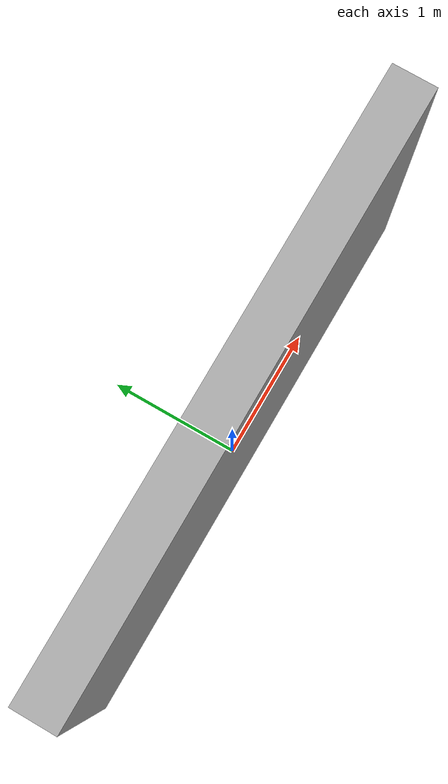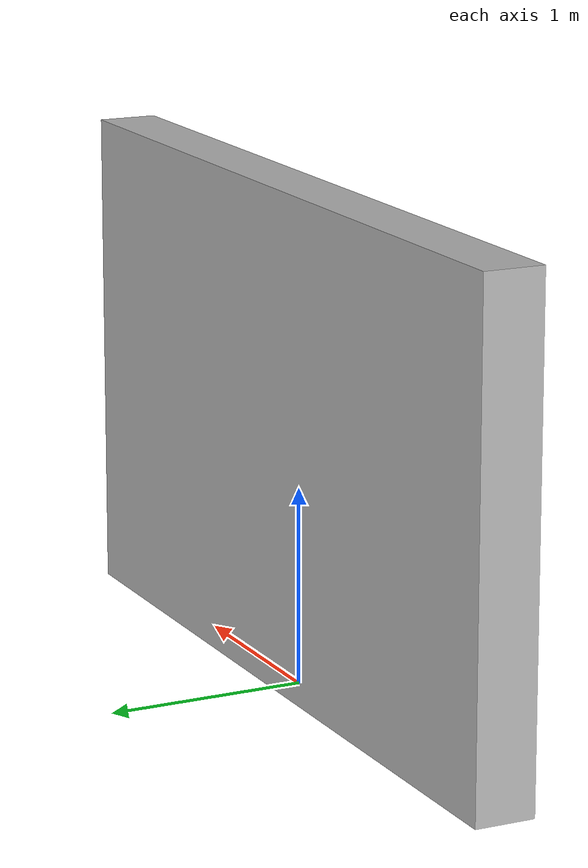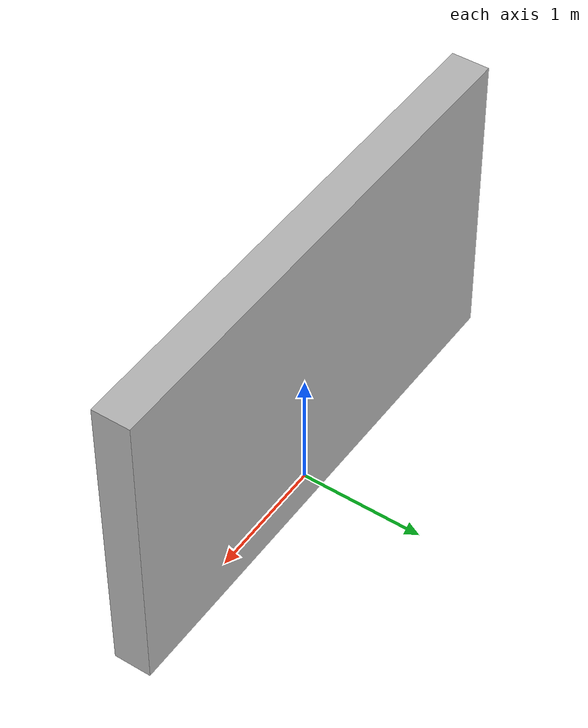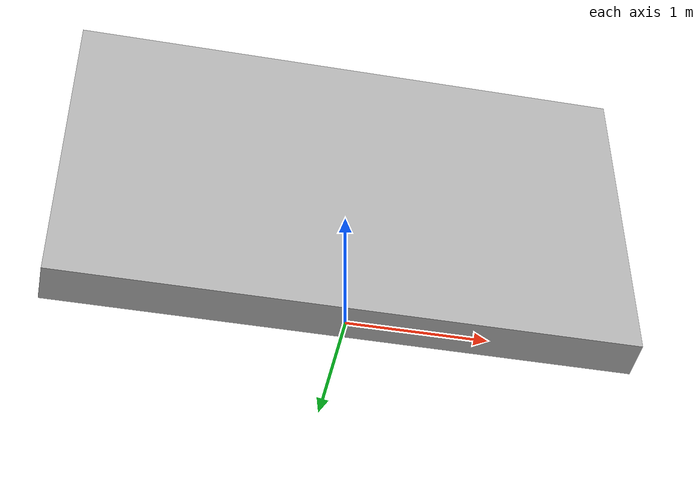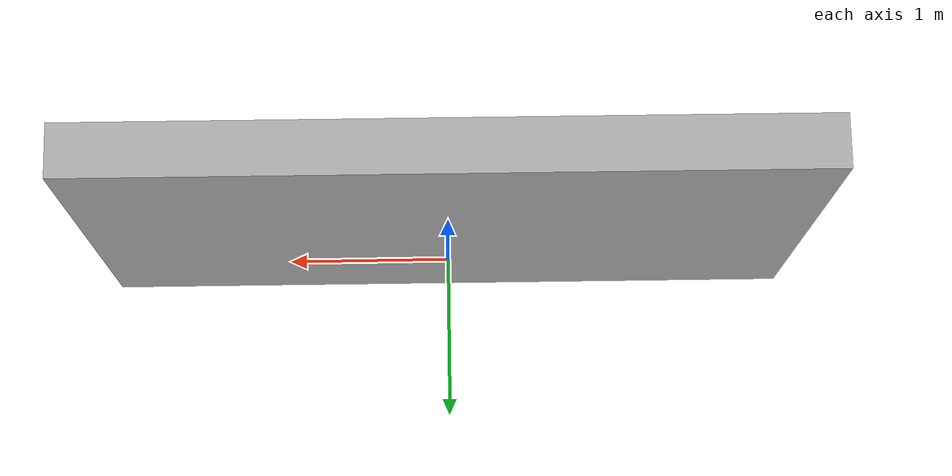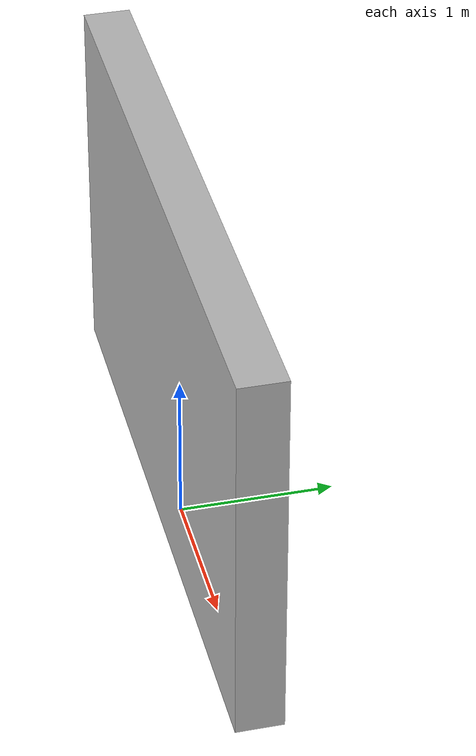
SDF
<?xml version="1.0" ?>
<sdf version="1.5">
  <model name="corridor_wall9">
    <static>true</static>
    <link name="link">
      <pose>0 0 1.25 0 0 0</pose>
      <collision name="collision">
        <geometry>
          <box>
            <size>4.15 0.3 2.5</size>
          </box>
        </geometry>
      </collision>
      <visual name="visual">
        <cast_shadows>false</cast_shadows>
        <geometry>
          <box>
            <size>4.15 0.3 2.5</size>
          </box>
        </geometry>
        <material>
          <script>
            <uri>model://corridor_wall9/materials/scripts</uri>
            <uri>model://corridor_wall9/materials/textures</uri>
            <name>vrc/corridor_wall9</name>
          </script>
        </material>
      </visual>
    </link>
  </model>
</sdf>
